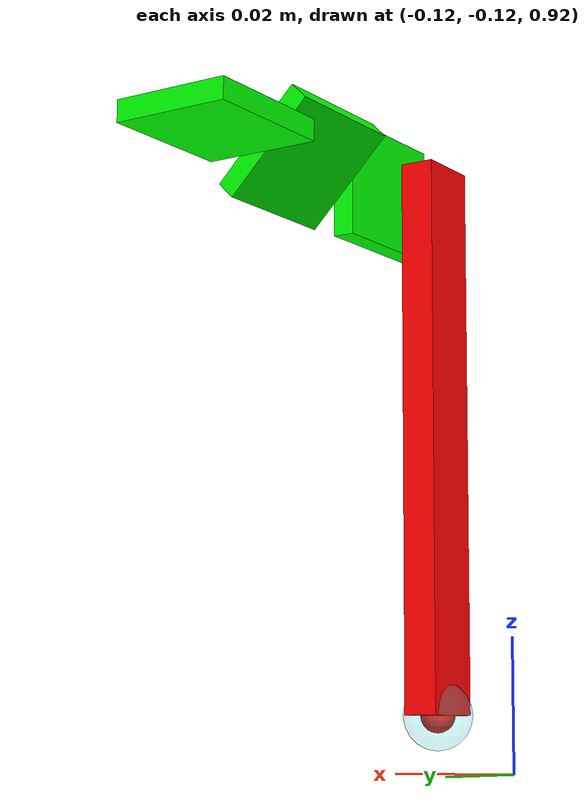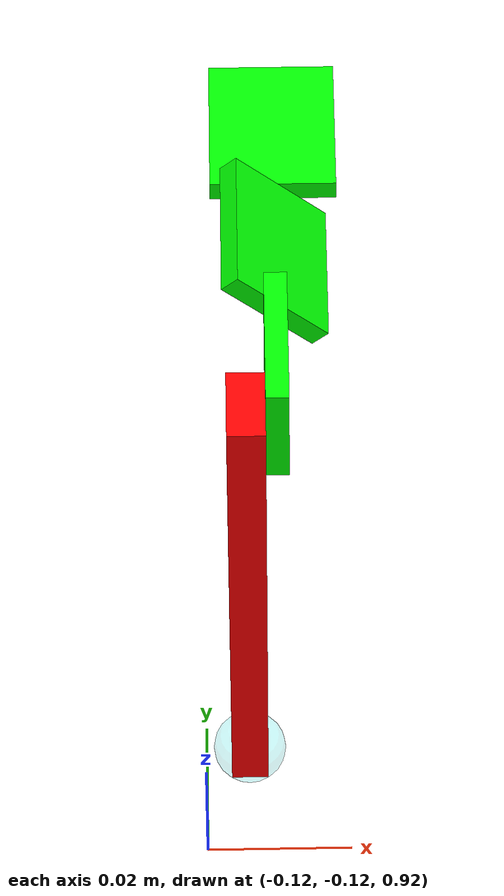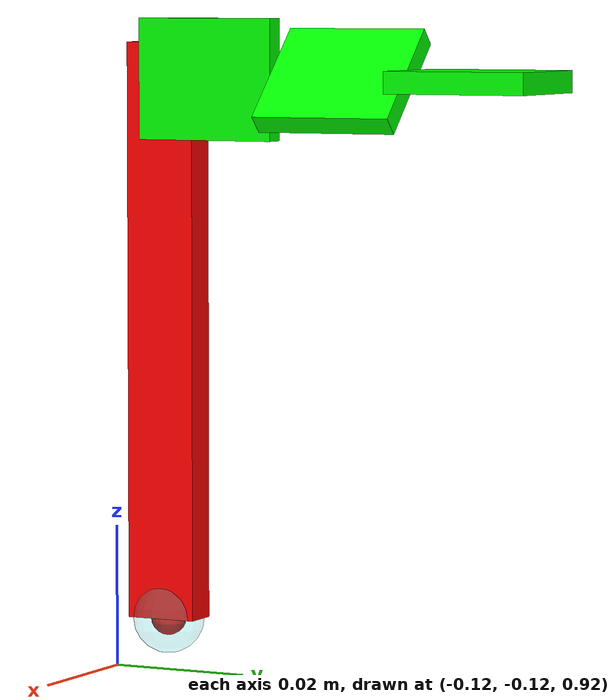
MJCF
<mujoco>
	<option gravity="0 0 -10"/>
	<option timestep="0.0001" />
	<worldbody>
		<light diffuse=".5 .5 .5" pos="0 0 12" dir="0 0 -1"/>

<!--Than-->
<body pos="0 0 1">

	<!--Chan-->
	<!--Thanh dam xoan 1-->
	<body pos="-0.11 -0.06 0.0035">
		<!-- Uon quanh X -->
		<joint type="hinge" axis="-1 0 0" stiffness="1.062072" damping="2.21209" springref="0" pos="0 .01 0"/>

		<!-- Uon quanh Z -->
		<joint type="hinge" axis="0 0 -1" stiffness="1.062072" damping="2.21209" springref="0" pos="0 .01 0"/>
		<geom type="box" density="1200" size=".0083 .01 .0015" rgba="0 1 0 1"/>

		<body pos="0 -.02 0" euler=" 0 45 0">
			<!-- Uon quanh X -->
			<joint type="hinge" axis="-1 0 0" stiffness="1.062072" damping="2.21209" springref="0" pos="0 .01 0"/>
			<!-- Xoan quanh Y -->
			<joint type="hinge" axis="0 -1 0" stiffness="0.0024" damping="0.00183" springref="0" pos="0 .01 0"/>
			<!-- Uon quanh Z -->
			<joint type="hinge" axis="0 0 -1" stiffness="1.062072" damping="2.21209" springref="0" pos="0 .01 0"/>
			<geom type="box" density="1200" size=".0083 .01 .0015" rgba="0 1 0 1"/>

			<body pos="0 -.02 0" euler=" 0 45 0">
				<!-- Uon quanh X -->
				<joint type="hinge" axis="-1 0 0" stiffness="1.062072" damping="2.21209" springref="0" pos="0 .01 0"/>
				<!-- Xoan quanh Y -->
				<joint type="hinge" axis="0 -1 0" stiffness="0.0024" damping="0.00183" springref="0" pos="0 .01 0" />
				<!-- Uon quanh Z -->
				<joint type="hinge" axis="0 0 -1" stiffness="1.062072" damping="2.21209" springref="0" pos="0 .01 0"/>
				<geom type="box" density="1200" size=".0083 .01 .0015" rgba="0 1 0 1"/>
				<!--Ban chan-->

				<body pos=" .035  -.0085 -0.004" euler=" 90 90 0">
					<geom type="box" density="1240" size=".005 .0025 .04" rgba="1 0 0 1" friction="1 0.5 0.01"/>

					<body pos="0 0 0.04 " euler=" 0 0 0">
						<geom type="sphere" density="1240" size=".0025" rgba="1 0 0 1" friction="1 0.5 0.01"/>
						<site name="S1" rgba="0 1 1 .2"/>
						<!--sensor-->
					</body>

				</body>

			</body>
		</body>
	</body>

</body>

	</worldbody>

	<sensor>
		<force name="Site1" site="S1"/>

	</sensor>

</mujoco>
